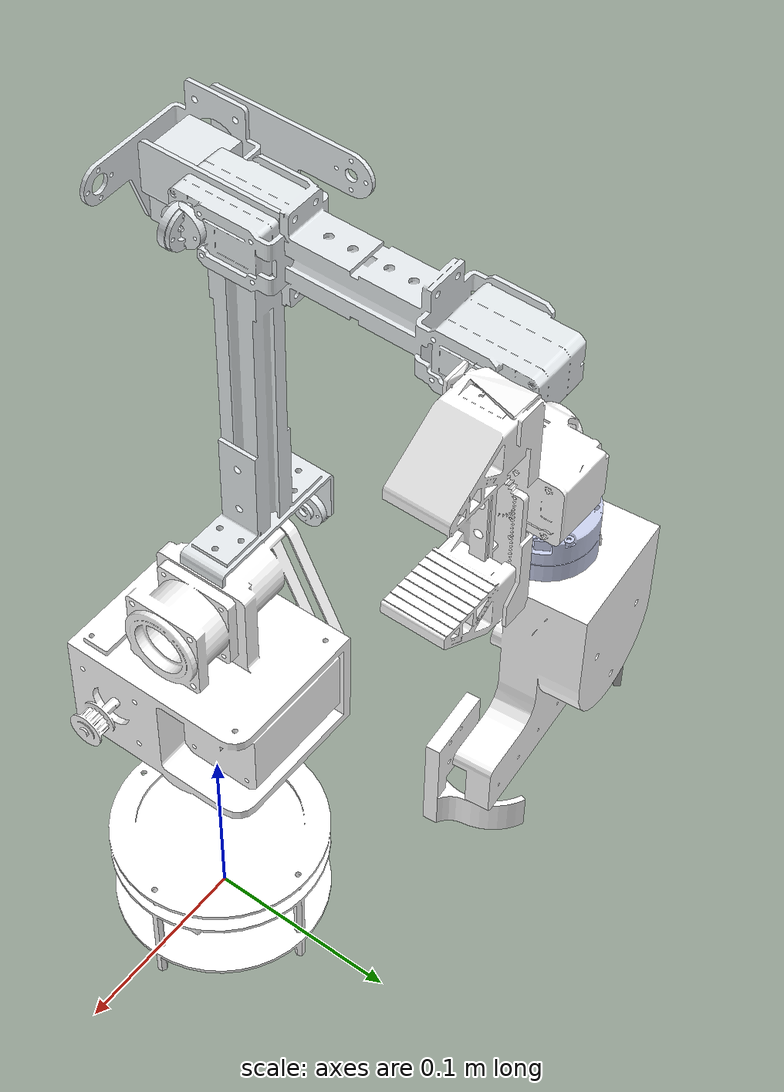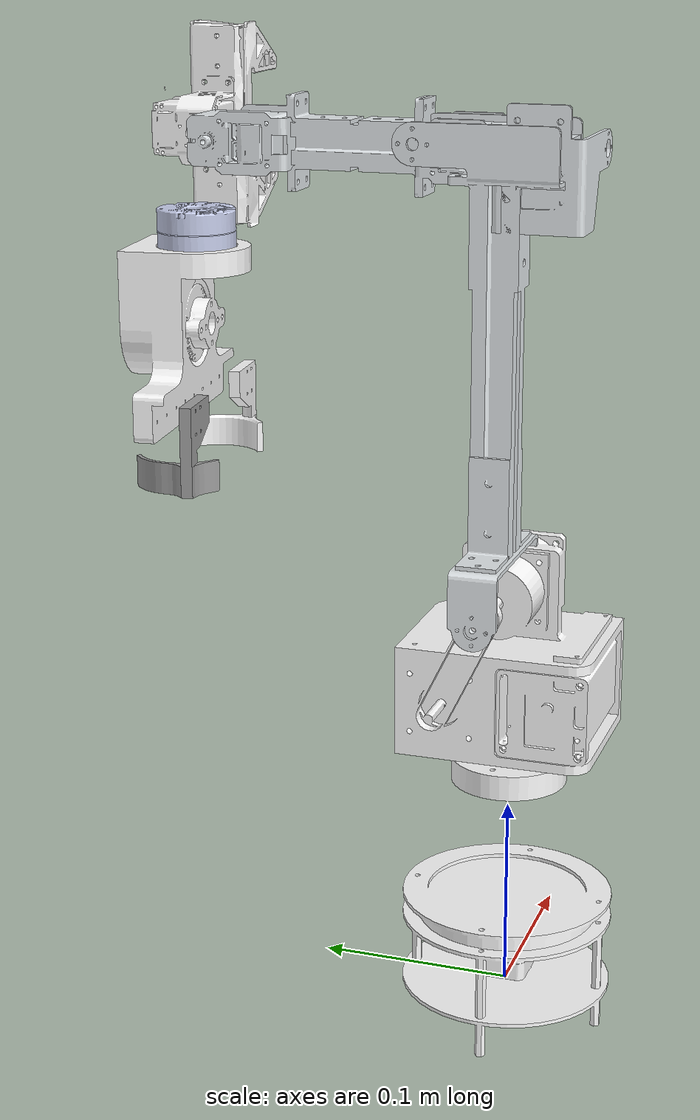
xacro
<?xml version="1.0"?>
<robot xmlns:xacro="http://www.ros.org/wiki/xacro" name="robot_arm_description">
    <xacro:arg name="initial_positions_file" default="initial_positions.yaml" />

    <!-- Import robot_arm_description urdf file -->
    <xacro:include filename="$(find robot_arm_description)/urdf/robot_arm_description.urdf" />

    <!-- Import control_xacro -->
    <xacro:include filename="robot_arm_description.ros2_control.xacro" />

    <xacro:robot_arm_description_ros2_control name="FakeSystem" initial_positions_file="$(arg initial_positions_file)"/>

</robot>

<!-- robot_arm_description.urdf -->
<robot
  name="robot_arm_description">

          <!-- 定义一个隐式的“world”链接 -->
  <link name="world"/>
  <joint name="world_to_base" type="fixed">
    <parent link="world"/>
    <child link="base_link"/>
    <origin xyz="0 0 0" rpy="0 0 0"/>
  </joint>

  <link
    name="base_link">
    <inertial>
      <origin
        xyz="-0.00956793839217978 -0.092686213637285 0.0909180226713094"
        rpy="0 0 0" />
      <mass
        value="4.31744712742293" />
      <inertia
        ixx="0.0112976279029648"
        ixy="3.51577236586452E-07"
        ixz="9.97829415944576E-06"
        iyy="0.0110674657070687"
        iyz="0.000218051185606114"
        izz="0.0186240189020078" />
    </inertial>
    <visual>
      <origin
        xyz="0 0 0"
        rpy="0 0 0" />
      <geometry>
        <mesh
          filename="package://robot_arm_description/meshes/base_link.STL" />
      </geometry>
      <material
        name="">
        <color
          rgba="1 1 1 1" />
      </material>
    </visual>
    <collision>
      <origin
        xyz="0 0 0"
        rpy="0 0 0" />
      <geometry>
        <mesh
          filename="package://robot_arm_description/meshes/base_link.STL" />
      </geometry>
    </collision>
  </link>
  <link
    name="link1">
    <inertial>
      <origin
        xyz="-0.000491174557142026 -0.000362251337845447 0.044474339979704"
        rpy="0 0 0" />
      <mass
        value="0.674947544731232" />
      <inertia
        ixx="0.000604501950882952"
        ixy="5.14269608785048E-05"
        ixz="2.52574578750344E-06"
        iyy="0.000622860916174633"
        iyz="1.79904056933917E-07"
        izz="0.000575127578688745" />
    </inertial>
    <visual>
      <origin
        xyz="0 0 0"
        rpy="0 0 0" />
      <geometry>
        <mesh
          filename="package://robot_arm_description/meshes/link1.STL" />
      </geometry>
      <material
        name="">
        <color
          rgba="1 1 1 1" />
      </material>
    </visual>
    <collision>
      <origin
        xyz="0 0 0"
        rpy="0 0 0" />
      <geometry>
        <mesh
          filename="package://robot_arm_description/meshes/link1.STL" />
      </geometry>
    </collision>
  </link>
  <joint
    name="joint1"
    type="revolute">
    <origin
      xyz="0 0 0.1284"
      rpy="0 0 0" />
    <parent
      link="base_link" />
    <child
      link="link1" />
    <axis
      xyz="0 0 1" />
    <limit
      lower="-4"
      upper="1"
      effort="100"
      velocity="1" />
  </joint>
  <link
    name="link2">
    <inertial>
      <origin
        xyz="0.00688549166474309 0.0971376141098785 0.013426585265842"
        rpy="0 0 0" />
      <mass
        value="0.658798195964531" />
      <inertia
        ixx="0.00192955984357513"
        ixy="1.80425445703782E-10"
        ixz="-1.75119505889331E-10"
        iyy="0.000324077654263951"
        iyz="0.000121493386851542"
        izz="0.0019293436502465" />
    </inertial>
    <visual>
      <origin
        xyz="0 0 0"
        rpy="0 0 0" />
      <geometry>
        <mesh
          filename="package://robot_arm_description/meshes/link2.STL" />
      </geometry>
      <material
        name="">
        <color
          rgba="0.898039215686275 0.917647058823529 0.929411764705882 1" />
      </material>
    </visual>
    <collision>
      <origin
        xyz="0 0 0"
        rpy="0 0 0" />
      <geometry>
        <mesh
          filename="package://robot_arm_description/meshes/link2.STL" />
      </geometry>
    </collision>
  </link>
  <joint
    name="joint2"
    type="revolute">
    <origin
      xyz="0 0 0.0927"
      rpy="1.5708 0 1.5708" />
    <parent
      link="link1" />
    <child
      link="link2" />
    <axis
      xyz="0 0 1" />
    <limit
      lower="-3.14"
      upper="0.8"
      effort="100"
      velocity="1" />
  </joint>
  <link
    name="link3">
    <inertial>
      <origin
        xyz="-0.0162723153394471 -0.0339296843080454 0.0089889322611172"
        rpy="0 0 0" />
      <mass
        value="0.138711461850837" />
      <inertia
        ixx="7.20784431438331E-05"
        ixy="-1.55169935671368E-05"
        ixz="-1.07599916867154E-05"
        iyy="6.50243647778878E-05"
        iyz="-1.75410546812074E-05"
        izz="8.57966462662998E-05" />
    </inertial>
    <visual>
      <origin
        xyz="0 0 0"
        rpy="0 0 0" />
      <geometry>
        <mesh
          filename="package://robot_arm_description/meshes/link3.STL" />
      </geometry>
      <material
        name="">
        <color
          rgba="0.898039215686275 0.917647058823529 0.929411764705882 1" />
      </material>
    </visual>
    <collision>
      <origin
        xyz="0 0 0"
        rpy="0 0 0" />
      <geometry>
        <mesh
          filename="package://robot_arm_description/meshes/link3.STL" />
      </geometry>
    </collision>
  </link>
  <joint
    name="joint3"
    type="revolute">
    <origin
      xyz="0 0.22 0"
      rpy="-3.1416 0 -1.5708" />
    <parent
      link="link2" />
    <child
      link="link3" />
    <axis
      xyz="0 0 -1" />
    <limit
      lower="-3.14"
      upper="1"
      effort="100"
      velocity="1" />
  </joint>
  <link
    name="link4">
    <inertial>
      <origin
        xyz="-3.14719516212869E-05 0.0114202510006353 0.119062651974254"
        rpy="0 0 0" />
      <mass
        value="0.121954908122942" />
      <inertia
        ixx="0.000112269556670139"
        ixy="2.78691845627752E-09"
        ixz="1.38504824887532E-08"
        iyy="0.000105746885852137"
        iyz="-1.35816151313456E-05"
        izz="2.2786621162764E-05" />
    </inertial>
    <visual>
      <origin
        xyz="0 0 0"
        rpy="0 0 0" />
      <geometry>
        <mesh
          filename="package://robot_arm_description/meshes/link4.STL" />
      </geometry>
      <material
        name="">
        <color
          rgba="0.898039215686275 0.917647058823529 0.929411764705882 1" />
      </material>
    </visual>
    <collision>
      <origin
        xyz="0 0 0"
        rpy="0 0 0" />
      <geometry>
        <mesh
          filename="package://robot_arm_description/meshes/link4.STL" />
      </geometry>
    </collision>
  </link>
  <joint
    name="joint4"
    type="revolute">
    <origin
      xyz="0 0 0"
      rpy="1.5708 0 0" />
    <parent
      link="link3" />
    <child
      link="link4" />
    <axis
      xyz="0 0 1" />
    <limit
      lower="-3.14"
      upper="1.5"
      effort="100"
      velocity="1" />
  </joint>
  <link
    name="link5">
    <inertial>
      <origin
        xyz="3.900879692742E-05 -0.0166604252884486 0.00975512932597962"
        rpy="0 0 0" />
      <mass
        value="0.0471062209334358" />
      <inertia
        ixx="1.46907431007333E-05"
        ixy="1.74858532011627E-11"
        ixz="-2.31868213906344E-08"
        iyy="8.06298145412319E-06"
        iyz="-3.65362595796874E-06"
        izz="1.35890587021117E-05" />
    </inertial>
    <visual>
      <origin
        xyz="0 0 0"
        rpy="0 0 0" />
      <geometry>
        <mesh
          filename="package://robot_arm_description/meshes/link5.STL" />
      </geometry>
      <material
        name="">
        <color
          rgba="1 1 1 1" />
      </material>
    </visual>
    <collision>
      <origin
        xyz="0 0 0"
        rpy="0 0 0" />
      <geometry>
        <mesh
          filename="package://robot_arm_description/meshes/link5.STL" />
      </geometry>
    </collision>
  </link>
  <joint
    name="joint5"
    type="revolute">
    <origin
      xyz="0 0 0.1685"
      rpy="1.5708 -1.5708 0" />
    <parent
      link="link4" />
    <child
      link="link5" />
    <axis
      xyz="0 0 -1" />
    <limit
      lower="-3.14"
      upper="1.0"
      effort="100"
      velocity="1" />
  </joint>
  <link
    name="link6">
    <inertial>
      <origin
        xyz="9.95590778481992E-05 -2.98711917670691E-05 0.0497166945495441"
        rpy="0 0 0" />
      <mass
        value="0.025635671653212" />
      <inertia
        ixx="3.13815351754909E-06"
        ixy="2.97302725476538E-08"
        ixz="1.6647582545735E-08"
        iyy="3.12676973154958E-06"
        iyz="7.1227328768286E-10"
        izz="5.62388863120047E-06" />
    </inertial>
    <visual>
      <origin
        xyz="0 0 0"
        rpy="0 0 0" />
      <geometry>
        <mesh
          filename="package://robot_arm_description/meshes/link6.STL" />
      </geometry>
      <material
        name="">
        <color
          rgba="0.792156862745098 0.819607843137255 0.933333333333333 1" />
      </material>
    </visual>
    <collision>
      <origin
        xyz="0 0 0"
        rpy="0 0 0" />
      <geometry>
        <mesh
          filename="package://robot_arm_description/meshes/link6.STL" />
      </geometry>
    </collision>
  </link>
  <joint
    name="joint6"
    type="revolute">
    <origin
      xyz="0 0 0"
      rpy="1.5708 0 0" />
    <parent
      link="link5" />
    <child
      link="link6" />
    <axis
      xyz="0 0 1" />
    <limit
      lower="-3.14"
      upper="3.14"
      effort="100"
      velocity="1" />
  </joint>
  <link
    name="link_hand">
    <inertial>
      <origin
        xyz="0.0121918868916105 -0.00116091508582963 0.0970327382136116"
        rpy="0 0 0" />
      <mass
        value="0.140989899651209" />
      <inertia
        ixx="0.000164567714501199"
        ixy="-4.76090299152527E-06"
        ixz="-1.61534133469647E-06"
        iyy="0.000115305703497291"
        iyz="1.7414581292232E-07"
        izz="8.5144229458496E-05" />
    </inertial>
    <visual>
      <origin
        xyz="0 0 0"
        rpy="0 0 0" />
      <geometry>
        <mesh
          filename="package://robot_arm_description/meshes/link_hand.STL" />
      </geometry>
      <material
        name="">
        <color
          rgba="1 1 1 1" />
      </material>
    </visual>
    <collision>
      <origin
        xyz="0 0 0"
        rpy="0 0 0" />
      <geometry>
        <mesh
          filename="package://robot_arm_description/meshes/link_hand.STL" />
      </geometry>
    </collision>
  </link>
  <joint
    name="joint_hand"
    type="fixed">
    <origin
      xyz="0 0 0"
      rpy="0 0 0" />
    <parent
      link="link6" />
    <child
      link="link_hand" />
    <axis
      xyz="0 0 0" />
  </joint>
  <link
    name="link_right">
    <inertial>
      <origin
        xyz="-0.00673545518369728 -0.00515632276669115 -0.0465020436892043"
        rpy="0 0 0" />
      <mass
        value="0.00742100783583876" />
      <inertia
        ixx="1.96056708562187E-06"
        ixy="3.37810331504543E-07"
        ixz="1.31566810945991E-08"
        iyy="9.67903644156337E-07"
        iyz="-3.01024771806151E-07"
        izz="2.1334495938295E-06" />
    </inertial>
    <visual>
      <origin
        xyz="0 0 0"
        rpy="0 0 0" />
      <geometry>
        <mesh
          filename="package://robot_arm_description/meshes/link_right.STL" />
      </geometry>
      <material
        name="">
        <color
          rgba="0.627450980392157 0.627450980392157 0.627450980392157 1" />
      </material>
    </visual>
    <collision>
      <origin
        xyz="0 0 0"
        rpy="0 0 0" />
      <geometry>
        <mesh
          filename="package://robot_arm_description/meshes/link_right.STL" />
      </geometry>
    </collision>
  </link>
  <joint
    name="joint_right"
    type="prismatic">
    <origin
      xyz="0 0 0.1465"
      rpy="-1.5708 0 -0.095289" />
    <parent
      link="link_hand" />
    <child
      link="link_right" />
    <axis
      xyz="0 0 1" />
    <limit
      lower="0"
      upper="0.06"
      effort="100"
      velocity="1" />
  </joint>
  <link
    name="link_left">
    <inertial>
      <origin
        xyz="0.00673545519462737 -0.00515632276231981 -0.046502043693942"
        rpy="0 0 0" />
      <mass
        value="0.00742100781440049" />
      <inertia
        ixx="1.96056708271233E-06"
        ixy="-3.37810331344714E-07"
        ixz="-1.31566812902485E-08"
        iyy="9.67903643301004E-07"
        iyz="-3.010247720343E-07"
        izz="2.13344959114745E-06" />
    </inertial>
    <visual>
      <origin
        xyz="0 0 0"
        rpy="0 0 0" />
      <geometry>
        <mesh
          filename="package://robot_arm_description/meshes/link_left.STL" />
      </geometry>
      <material
        name="">
        <color
          rgba="1 1 1 1" />
      </material>
    </visual>
    <collision>
      <origin
        xyz="0 0 0"
        rpy="0 0 0" />
      <geometry>
        <mesh
          filename="package://robot_arm_description/meshes/link_left.STL" />
      </geometry>
    </collision>
  </link>
  <joint
    name="joint_left"
    type="prismatic">
    <origin
      xyz="0 0 0.1465"
      rpy="-1.5708 0 3.0463" />
    <parent
      link="link_hand" />
    <child
      link="link_left" />
    <axis
      xyz="0 0 1" />
    <limit
      lower="0"
      upper="0.06"
      effort="100"
      velocity="1" />
     <mimic joint="joint_right" />
  </joint>
</robot>
